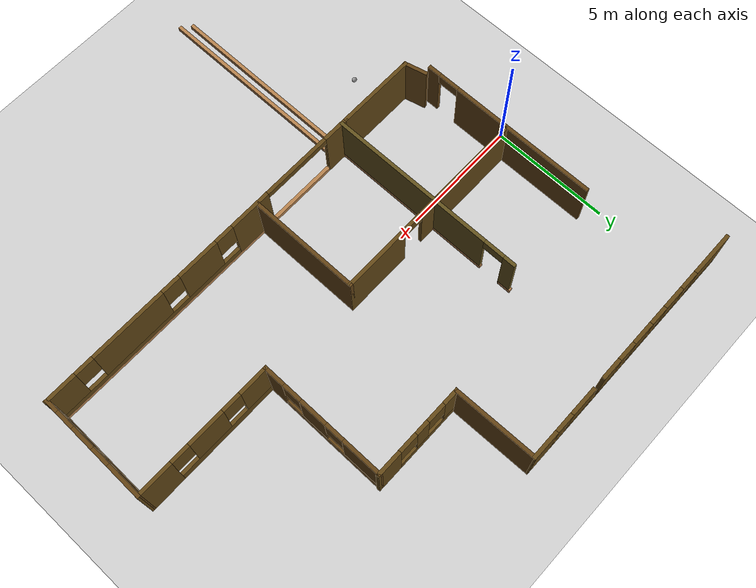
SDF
<sdf version="1.6">
 <world name="default">
  <model name="ground_plane">
   <static>1</static>
   <link name="link">
    <collision name="collision">
     <geometry><plane><normal>0 0 1</normal><size>100 100</size></plane></geometry>
     <surface>
      <contact><collide_bitmask>65535</collide_bitmask></contact>
      <friction><ode><mu>100</mu><mu2>50</mu2></ode></friction>
     </surface>
    </collision>
    <visual name="visual">
     <cast_shadows>0</cast_shadows>
     <geometry><plane><normal>0 0 1</normal><size>100 100</size></plane></geometry>
     <material>
      <script><uri>file://media/materials/scripts/gazebo.material</uri><name>Gazebo/Grey</name></script>
     </material>
    </visual>
   </link>
  </model>
  <model name="BuildMyWorld">
   <pose>-3.99019 0.7838 0 0 -0 0</pose>
   <link name="Wall_101">
    <collision name="Wall_101_Collision">
     <geometry><box><size>8.965 0.15 0.2</size></box></geometry>
     <pose>0 0 0.1 0 -0 0</pose>
    </collision>
    <visual name="Wall_101_Visual">
     <pose>0 0 0.1 0 -0 0</pose>
     <geometry><box><size>8.965 0.15 0.2</size></box></geometry>
     <material>
      <script><uri>file://media/materials/scripts/gazebo.material</uri><name>Gazebo/Wood</name></script>
      <ambient>1 1 1 1</ambient>
     </material>
     <meta><layer>0</layer></meta>
    </visual>
    <pose>9.13619 -9.29728 0 0 -0 1.5708</pose>
   </link>
   <link name="Wall_52">
    <pose>8.73919 -4.86228 0 0 -0 1.5708</pose>
    <visual name="Wall_52_Visual_0">
     <pose>-0.730883 0 0.1 0 -0 0</pose>
     <geometry><box><size>15.7353 0.15 0.2</size></box></geometry>
     <material>
      <script><uri>file://media/materials/scripts/gazebo.material</uri><name>Gazebo/Wood</name></script>
      <ambient>1 1 1 1</ambient>
     </material>
     <meta><layer>0</layer></meta>
    </visual>
    <collision name="Wall_52_Collision_0">
     <geometry><box><size>15.7353 0.15 0.2</size></box></geometry>
     <pose>-0.730883 0 0.1 0 -0 0</pose>
    </collision>
    <visual name="Wall_52_Visual_1">
     <pose>8.31765 0 0.1 0 -0 0</pose>
     <geometry><box><size>0.561765 0.15 0.2</size></box></geometry>
     <material>
      <script><uri>file://media/materials/scripts/gazebo.material</uri><name>Gazebo/Wood</name></script>
      <ambient>1 1 1 1</ambient>
     </material>
     <meta><layer>0</layer></meta>
    </visual>
    <collision name="Wall_52_Collision_1">
     <geometry><box><size>0.561765 0.15 0.2</size></box></geometry>
     <pose>8.31765 0 0.1 0 -0 0</pose>
    </collision>
   </link>
   <link name="Wall_55">
    <collision name="Wall_55_Collision">
     <geometry><box><size>1.02553 0.15 2.5</size></box></geometry>
     <pose>0 0 1.25 0 -0 0</pose>
    </collision>
    <visual name="Wall_55_Visual">
     <pose>0 0 1.25 0 -0 0</pose>
     <geometry><box><size>1.02553 0.15 2.5</size></box></geometry>
     <material>
      <script><uri>file://media/materials/scripts/gazebo.material</uri><name>Gazebo/Grey</name></script>
      <ambient>0.384314 0.258824 0.0823529 1</ambient>
     </material>
     <meta><layer>0</layer></meta>
    </visual>
    <pose>5.11981 -4.37063 0 0 0 -1.32872</pose>
   </link>
   <link name="Wall_56">
    <collision name="Wall_56_Collision">
     <geometry><box><size>3.43004 0.15 2.5</size></box></geometry>
     <pose>0 0 1.25 0 -0 0</pose>
    </collision>
    <visual name="Wall_56_Visual">
     <pose>0 0 1.25 0 -0 0</pose>
     <geometry><box><size>3.43004 0.15 2.5</size></box></geometry>
     <material>
      <script><uri>file://media/materials/scripts/gazebo.material</uri><name>Gazebo/Grey</name></script>
      <ambient>0.384314 0.27451 0.0862745 1</ambient>
     </material>
     <meta><layer>0</layer></meta>
    </visual>
    <pose>6.86477 -4.79563 0 0 -0 0</pose>
   </link>
   <link name="Wall_58">
    <pose>15.8398 -4.79563 0 0 -0 0</pose>
    <visual name="Wall_58_Visual_0">
     <pose>-6.78269 0 1.25 0 -0 0</pose>
     <geometry><box><size>1.18462 0.15 2.5</size></box></geometry>
     <material>
      <script><uri>file://media/materials/scripts/gazebo.material</uri><name>Gazebo/Grey</name></script>
      <ambient>0.384314 0.27451 0.0862745 1</ambient>
     </material>
     <meta><layer>0</layer></meta>
    </visual>
    <collision name="Wall_58_Collision_0">
     <geometry><box><size>1.18462 0.15 2.5</size></box></geometry>
     <pose>-6.78269 0 1.25 0 -0 0</pose>
    </collision>
    <visual name="Wall_58_Visual_1">
     <pose>0.592308 0 0.1 0 -0 0</pose>
     <geometry><box><size>13.5654 0.15 0.2</size></box></geometry>
     <material>
      <script><uri>file://media/materials/scripts/gazebo.material</uri><name>Gazebo/Wood</name></script>
      <ambient>0.384314 0.27451 0.0862745 1</ambient>
     </material>
     <meta><layer>0</layer></meta>
    </visual>
    <collision name="Wall_58_Collision_1">
     <geometry><box><size>13.5654 0.15 0.2</size></box></geometry>
     <pose>0.592308 0 0.1 0 -0 0</pose>
    </collision>
    <visual name="Wall_58_Visual_2">
     <pose>-2.29175 0 1.35 0 -0 0</pose>
     <geometry><box><size>1.79726 0.15 2.3</size></box></geometry>
     <material>
      <script><uri>file://media/materials/scripts/gazebo.material</uri><name>Gazebo/Grey</name></script>
      <ambient>0.384314 0.27451 0.0862745 1</ambient>
     </material>
     <meta><layer>0</layer></meta>
    </visual>
    <collision name="Wall_58_Collision_2">
     <geometry><box><size>1.79726 0.15 2.3</size></box></geometry>
     <pose>-2.29175 0 1.35 0 -0 0</pose>
    </collision>
    <visual name="Wall_58_Visual_3">
     <pose>2.99094 0 0.35 0 -0 0</pose>
     <geometry><box><size>8.76812 0.15 0.3</size></box></geometry>
     <material>
      <script><uri>file://media/materials/scripts/gazebo.material</uri><name>Gazebo/Grey</name></script>
      <ambient>0.384314 0.27451 0.0862745 1</ambient>
     </material>
     <meta><layer>0</layer></meta>
    </visual>
    <collision name="Wall_58_Collision_3">
     <geometry><box><size>8.76812 0.15 0.3</size></box></geometry>
     <pose>2.99094 0 0.35 0 -0 0</pose>
    </collision>
    <visual name="Wall_58_Visual_4">
     <pose>0.302195 0 1.5 0 -0 0</pose>
     <geometry><box><size>1.79063 0.15 2</size></box></geometry>
     <material>
      <script><uri>file://media/materials/scripts/gazebo.material</uri><name>Gazebo/Grey</name></script>
      <ambient>0.384314 0.27451 0.0862745 1</ambient>
     </material>
     <meta><layer>0</layer></meta>
    </visual>
    <collision name="Wall_58_Collision_4">
     <geometry><box><size>1.79063 0.15 2</size></box></geometry>
     <pose>0.302195 0 1.5 0 -0 0</pose>
    </collision>
    <visual name="Wall_58_Visual_5">
     <pose>3.60987 0 1.5 0 -0 0</pose>
     <geometry><box><size>3.22473 0.15 2</size></box></geometry>
     <material>
      <script><uri>file://media/materials/scripts/gazebo.material</uri><name>Gazebo/Grey</name></script>
      <ambient>0.384314 0.27451 0.0862745 1</ambient>
     </material>
     <meta><layer>0</layer></meta>
    </visual>
    <collision name="Wall_58_Collision_5">
     <geometry><box><size>3.22473 0.15 2</size></box></geometry>
     <pose>3.60987 0 1.5 0 -0 0</pose>
    </collision>
    <visual name="Wall_58_Visual_6">
     <pose>6.69862 0 1.5 0 -0 0</pose>
     <geometry><box><size>1.35277 0.15 2</size></box></geometry>
     <material>
      <script><uri>file://media/materials/scripts/gazebo.material</uri><name>Gazebo/Grey</name></script>
      <ambient>0.384314 0.27451 0.0862745 1</ambient>
     </material>
     <meta><layer>0</layer></meta>
    </visual>
    <collision name="Wall_58_Collision_6">
     <geometry><box><size>1.35277 0.15 2</size></box></geometry>
     <pose>6.69862 0 1.5 0 -0 0</pose>
    </collision>
    <visual name="Wall_58_Visual_7">
     <pose>-0.993119 0 1.9 0 -0 0</pose>
     <geometry><box><size>0.8 0.15 1.2</size></box></geometry>
     <material>
      <script><uri>file://media/materials/scripts/gazebo.material</uri><name>Gazebo/Grey</name></script>
      <ambient>0.384314 0.27451 0.0862745 1</ambient>
     </material>
     <meta><layer>0</layer></meta>
    </visual>
    <collision name="Wall_58_Collision_7">
     <geometry><box><size>0.8 0.15 1.2</size></box></geometry>
     <pose>-0.993119 0 1.9 0 -0 0</pose>
    </collision>
    <visual name="Wall_58_Visual_8">
     <pose>1.59751 0 1.9 0 -0 0</pose>
     <geometry><box><size>0.8 0.15 1.2</size></box></geometry>
     <material>
      <script><uri>file://media/materials/scripts/gazebo.material</uri><name>Gazebo/Grey</name></script>
      <ambient>0.384314 0.27451 0.0862745 1</ambient>
     </material>
     <meta><layer>0</layer></meta>
    </visual>
    <collision name="Wall_58_Collision_8">
     <geometry><box><size>0.8 0.15 1.2</size></box></geometry>
     <pose>1.59751 0 1.9 0 -0 0</pose>
    </collision>
    <visual name="Wall_58_Visual_9">
     <pose>5.62223 0 1.9 0 -0 0</pose>
     <geometry><box><size>0.8 0.15 1.2</size></box></geometry>
     <material>
      <script><uri>file://media/materials/scripts/gazebo.material</uri><name>Gazebo/Grey</name></script>
      <ambient>0.384314 0.27451 0.0862745 1</ambient>
     </material>
     <meta><layer>0</layer></meta>
    </visual>
    <collision name="Wall_58_Collision_9">
     <geometry><box><size>0.8 0.15 1.2</size></box></geometry>
     <pose>5.62223 0 1.9 0 -0 0</pose>
    </collision>
    <visual name="Wall_58_Visual_10">
     <pose>-4.69038 0 2.35 0 -0 0</pose>
     <geometry><box><size>3 0.15 0.3</size></box></geometry>
     <material>
      <script><uri>file://media/materials/scripts/gazebo.material</uri><name>Gazebo/Grey</name></script>
      <ambient>0.384314 0.27451 0.0862745 1</ambient>
     </material>
     <meta><layer>0</layer></meta>
    </visual>
    <collision name="Wall_58_Collision_10">
     <geometry><box><size>3 0.15 0.3</size></box></geometry>
     <pose>-4.69038 0 2.35 0 -0 0</pose>
    </collision>
   </link>
   <link name="Wall_59">
    <pose>23.1398 -2.49563 0 0 -0 1.55559</pose>
    <visual name="Wall_59_Visual_0">
     <pose>-2.07621 0 1.25 0 -0 0</pose>
     <geometry><box><size>0.597589 0.15 2.5</size></box></geometry>
     <material>
      <script><uri>file://media/materials/scripts/gazebo.material</uri><name>Gazebo/Grey</name></script>
      <ambient>0.384314 0.258824 0.0823529 1</ambient>
     </material>
     <meta><layer>0</layer></meta>
    </visual>
    <collision name="Wall_59_Collision_0">
     <geometry><box><size>0.597589 0.15 2.5</size></box></geometry>
     <pose>-2.07621 0 1.25 0 -0 0</pose>
    </collision>
    <visual name="Wall_59_Visual_1">
     <pose>0.298794 0 0.25 0 -0 0</pose>
     <geometry><box><size>4.15241 0.15 0.5</size></box></geometry>
     <material>
      <script><uri>file://media/materials/scripts/gazebo.material</uri><name>Gazebo/Grey</name></script>
      <ambient>0.384314 0.258824 0.0823529 1</ambient>
     </material>
     <meta><layer>0</layer></meta>
    </visual>
    <collision name="Wall_59_Collision_1">
     <geometry><box><size>4.15241 0.15 0.5</size></box></geometry>
     <pose>0.298794 0 0.25 0 -0 0</pose>
    </collision>
    <visual name="Wall_59_Visual_2">
     <pose>-0.474898 0 1.5 0 -0 0</pose>
     <geometry><box><size>1.00503 0.15 2</size></box></geometry>
     <material>
      <script><uri>file://media/materials/scripts/gazebo.material</uri><name>Gazebo/Grey</name></script>
      <ambient>0.384314 0.258824 0.0823529 1</ambient>
     </material>
     <meta><layer>0</layer></meta>
    </visual>
    <collision name="Wall_59_Collision_2">
     <geometry><box><size>1.00503 0.15 2</size></box></geometry>
     <pose>-0.474898 0 1.5 0 -0 0</pose>
    </collision>
    <visual name="Wall_59_Visual_3">
     <pose>1.60131 0 1.5 0 -0 0</pose>
     <geometry><box><size>1.54739 0.15 2</size></box></geometry>
     <material>
      <script><uri>file://media/materials/scripts/gazebo.material</uri><name>Gazebo/Grey</name></script>
      <ambient>0.384314 0.258824 0.0823529 1</ambient>
     </material>
     <meta><layer>0</layer></meta>
    </visual>
    <collision name="Wall_59_Collision_3">
     <geometry><box><size>1.54739 0.15 2</size></box></geometry>
     <pose>1.60131 0 1.5 0 -0 0</pose>
    </collision>
    <visual name="Wall_59_Visual_4">
     <pose>-1.37741 0 1.9 0 -0 0</pose>
     <geometry><box><size>0.8 0.15 1.2</size></box></geometry>
     <material>
      <script><uri>file://media/materials/scripts/gazebo.material</uri><name>Gazebo/Grey</name></script>
      <ambient>0.384314 0.258824 0.0823529 1</ambient>
     </material>
     <meta><layer>0</layer></meta>
    </visual>
    <collision name="Wall_59_Collision_4">
     <geometry><box><size>0.8 0.15 1.2</size></box></geometry>
     <pose>-1.37741 0 1.9 0 -0 0</pose>
    </collision>
    <visual name="Wall_59_Visual_5">
     <pose>0.427615 0 1.9 0 -0 0</pose>
     <geometry><box><size>0.8 0.15 1.2</size></box></geometry>
     <material>
      <script><uri>file://media/materials/scripts/gazebo.material</uri><name>Gazebo/Grey</name></script>
      <ambient>0.384314 0.258824 0.0823529 1</ambient>
     </material>
     <meta><layer>0</layer></meta>
    </visual>
    <collision name="Wall_59_Collision_5">
     <geometry><box><size>0.8 0.15 1.2</size></box></geometry>
     <pose>0.427615 0 1.9 0 -0 0</pose>
    </collision>
   </link>
   <link name="Wall_60">
    <pose>20.2498 -0.195633 0 0 -0 3.14159</pose>
    <visual name="Wall_60_Visual_0">
     <pose>-2.23109 0 1.25 0 -0 0</pose>
     <geometry><box><size>1.53781 0.15 2.5</size></box></geometry>
     <material>
      <script><uri>file://media/materials/scripts/gazebo.material</uri><name>Gazebo/Grey</name></script>
      <ambient>0.384314 0.27451 0.0862745 1</ambient>
     </material>
     <meta><layer>0</layer></meta>
    </visual>
    <collision name="Wall_60_Collision_0">
     <geometry><box><size>1.53781 0.15 2.5</size></box></geometry>
     <pose>-2.23109 0 1.25 0 -0 0</pose>
    </collision>
    <visual name="Wall_60_Visual_1">
     <pose>0.768905 0 0.25 0 -0 0</pose>
     <geometry><box><size>4.46219 0.15 0.5</size></box></geometry>
     <material>
      <script><uri>file://media/materials/scripts/gazebo.material</uri><name>Gazebo/Grey</name></script>
      <ambient>0.384314 0.27451 0.0862745 1</ambient>
     </material>
     <meta><layer>0</layer></meta>
    </visual>
    <collision name="Wall_60_Collision_1">
     <geometry><box><size>4.46219 0.15 0.5</size></box></geometry>
     <pose>0.768905 0 0.25 0 -0 0</pose>
    </collision>
    <visual name="Wall_60_Visual_2">
     <pose>0.117472 0 1.5 0 -0 0</pose>
     <geometry><box><size>1.55932 0.15 2</size></box></geometry>
     <material>
      <script><uri>file://media/materials/scripts/gazebo.material</uri><name>Gazebo/Grey</name></script>
      <ambient>0.384314 0.27451 0.0862745 1</ambient>
     </material>
     <meta><layer>0</layer></meta>
    </visual>
    <collision name="Wall_60_Collision_2">
     <geometry><box><size>1.55932 0.15 2</size></box></geometry>
     <pose>0.117472 0 1.5 0 -0 0</pose>
    </collision>
    <visual name="Wall_60_Visual_3">
     <pose>2.34857 0 1.5 0 -0 0</pose>
     <geometry><box><size>1.30287 0.15 2</size></box></geometry>
     <material>
      <script><uri>file://media/materials/scripts/gazebo.material</uri><name>Gazebo/Grey</name></script>
      <ambient>0.384314 0.27451 0.0862745 1</ambient>
     </material>
     <meta><layer>0</layer></meta>
    </visual>
    <collision name="Wall_60_Collision_3">
     <geometry><box><size>1.30287 0.15 2</size></box></geometry>
     <pose>2.34857 0 1.5 0 -0 0</pose>
    </collision>
    <visual name="Wall_60_Visual_4">
     <pose>-1.06219 0 1.9 0 -0 0</pose>
     <geometry><box><size>0.8 0.15 1.2</size></box></geometry>
     <material>
      <script><uri>file://media/materials/scripts/gazebo.material</uri><name>Gazebo/Grey</name></script>
      <ambient>0.384314 0.27451 0.0862745 1</ambient>
     </material>
     <meta><layer>0</layer></meta>
    </visual>
    <collision name="Wall_60_Collision_4">
     <geometry><box><size>0.8 0.15 1.2</size></box></geometry>
     <pose>-1.06219 0 1.9 0 -0 0</pose>
    </collision>
    <visual name="Wall_60_Visual_5">
     <pose>1.29713 0 1.9 0 -0 0</pose>
     <geometry><box><size>0.8 0.15 1.2</size></box></geometry>
     <material>
      <script><uri>file://media/materials/scripts/gazebo.material</uri><name>Gazebo/Grey</name></script>
      <ambient>0.384314 0.27451 0.0862745 1</ambient>
     </material>
     <meta><layer>0</layer></meta>
    </visual>
    <collision name="Wall_60_Collision_5">
     <geometry><box><size>0.8 0.15 1.2</size></box></geometry>
     <pose>1.29713 0 1.9 0 -0 0</pose>
    </collision>
   </link>
   <link name="Wall_61">
    <pose>17.334 2.45647 0 0 -0 1.56732</pose>
    <visual name="Wall_61_Visual_0">
     <pose>-2.25334 0 1.25 0 -0 0</pose>
     <geometry><box><size>0.94756 0.15 2.5</size></box></geometry>
     <material>
      <script><uri>file://media/materials/scripts/gazebo.material</uri><name>Gazebo/Grey</name></script>
      <ambient>0.384314 0.258824 0.0823529 1</ambient>
     </material>
     <meta><layer>0</layer></meta>
    </visual>
    <collision name="Wall_61_Collision_0">
     <geometry><box><size>0.94756 0.15 2.5</size></box></geometry>
     <pose>-2.25334 0 1.25 0 -0 0</pose>
    </collision>
    <visual name="Wall_61_Visual_1">
     <pose>0.47378 0 0.25 0 -0 0</pose>
     <geometry><box><size>4.50669 0.15 0.5</size></box></geometry>
     <material>
      <script><uri>file://media/materials/scripts/gazebo.material</uri><name>Gazebo/Grey</name></script>
      <ambient>0.384314 0.258824 0.0823529 1</ambient>
     </material>
     <meta><layer>0</layer></meta>
    </visual>
    <collision name="Wall_61_Collision_1">
     <geometry><box><size>4.50669 0.15 0.5</size></box></geometry>
     <pose>0.47378 0 0.25 0 -0 0</pose>
    </collision>
    <visual name="Wall_61_Visual_2">
     <pose>-0.385033 0 1.5 0 -0 0</pose>
     <geometry><box><size>1.18906 0.15 2</size></box></geometry>
     <material>
      <script><uri>file://media/materials/scripts/gazebo.material</uri><name>Gazebo/Grey</name></script>
      <ambient>0.384314 0.258824 0.0823529 1</ambient>
     </material>
     <meta><layer>0</layer></meta>
    </visual>
    <collision name="Wall_61_Collision_2">
     <geometry><box><size>1.18906 0.15 2</size></box></geometry>
     <pose>-0.385033 0 1.5 0 -0 0</pose>
    </collision>
    <visual name="Wall_61_Visual_3">
     <pose>1.86831 0 1.5 0 -0 0</pose>
     <geometry><box><size>1.71763 0.15 2</size></box></geometry>
     <material>
      <script><uri>file://media/materials/scripts/gazebo.material</uri><name>Gazebo/Grey</name></script>
      <ambient>0.384314 0.258824 0.0823529 1</ambient>
     </material>
     <meta><layer>0</layer></meta>
    </visual>
    <collision name="Wall_61_Collision_3">
     <geometry><box><size>1.71763 0.15 2</size></box></geometry>
     <pose>1.86831 0 1.5 0 -0 0</pose>
    </collision>
    <visual name="Wall_61_Visual_4">
     <pose>-1.37956 0 1.9 0 -0 0</pose>
     <geometry><box><size>0.8 0.15 1.2</size></box></geometry>
     <material>
      <script><uri>file://media/materials/scripts/gazebo.material</uri><name>Gazebo/Grey</name></script>
      <ambient>0.384314 0.258824 0.0823529 1</ambient>
     </material>
     <meta><layer>0</layer></meta>
    </visual>
    <collision name="Wall_61_Collision_4">
     <geometry><box><size>0.8 0.15 1.2</size></box></geometry>
     <pose>-1.37956 0 1.9 0 -0 0</pose>
    </collision>
    <visual name="Wall_61_Visual_5">
     <pose>0.609496 0 1.9 0 -0 0</pose>
     <geometry><box><size>0.8 0.15 1.2</size></box></geometry>
     <material>
      <script><uri>file://media/materials/scripts/gazebo.material</uri><name>Gazebo/Grey</name></script>
      <ambient>0.384314 0.258824 0.0823529 1</ambient>
     </material>
     <meta><layer>0</layer></meta>
    </visual>
    <collision name="Wall_61_Collision_5">
     <geometry><box><size>0.8 0.15 1.2</size></box></geometry>
     <pose>0.609496 0 1.9 0 -0 0</pose>
    </collision>
   </link>
   <link name="Wall_62">
    <pose>15.4532 5.10858 0 0 -0 3.14159</pose>
    <visual name="Wall_62_Visual_0">
     <pose>-1.44622 0 1.25 0 -0 0</pose>
     <geometry><box><size>1.10755 0.15 2.5</size></box></geometry>
     <material>
      <script><uri>file://media/materials/scripts/gazebo.material</uri><name>Gazebo/Grey</name></script>
      <ambient>0.384314 0.27451 0.0862745 1</ambient>
     </material>
     <meta><layer>0</layer></meta>
    </visual>
    <collision name="Wall_62_Collision_0">
     <geometry><box><size>1.10755 0.15 2.5</size></box></geometry>
     <pose>-1.44622 0 1.25 0 -0 0</pose>
    </collision>
    <visual name="Wall_62_Visual_1">
     <pose>0.553776 0 0.25 0 -0 0</pose>
     <geometry><box><size>2.89245 0.15 0.5</size></box></geometry>
     <material>
      <script><uri>file://media/materials/scripts/gazebo.material</uri><name>Gazebo/Grey</name></script>
      <ambient>0.384314 0.27451 0.0862745 1</ambient>
     </material>
     <meta><layer>0</layer></meta>
    </visual>
    <collision name="Wall_62_Collision_1">
     <geometry><box><size>2.89245 0.15 0.5</size></box></geometry>
     <pose>0.553776 0 0.25 0 -0 0</pose>
    </collision>
    <visual name="Wall_62_Visual_2">
     <pose>0.201469 0 1.5 0 -0 0</pose>
     <geometry><box><size>0.587836 0.15 2</size></box></geometry>
     <material>
      <script><uri>file://media/materials/scripts/gazebo.material</uri><name>Gazebo/Grey</name></script>
      <ambient>0.384314 0.27451 0.0862745 1</ambient>
     </material>
     <meta><layer>0</layer></meta>
    </visual>
    <collision name="Wall_62_Collision_2">
     <geometry><box><size>0.587836 0.15 2</size></box></geometry>
     <pose>0.201469 0 1.5 0 -0 0</pose>
    </collision>
    <visual name="Wall_62_Visual_3">
     <pose>1.64769 0 1.5 0 -0 0</pose>
     <geometry><box><size>0.704612 0.15 2</size></box></geometry>
     <material>
      <script><uri>file://media/materials/scripts/gazebo.material</uri><name>Gazebo/Grey</name></script>
      <ambient>0.384314 0.27451 0.0862745 1</ambient>
     </material>
     <meta><layer>0</layer></meta>
    </visual>
    <collision name="Wall_62_Collision_3">
     <geometry><box><size>0.704612 0.15 2</size></box></geometry>
     <pose>1.64769 0 1.5 0 -0 0</pose>
    </collision>
    <visual name="Wall_62_Visual_4">
     <pose>-0.492449 0 1.9 0 -0 0</pose>
     <geometry><box><size>0.8 0.15 1.2</size></box></geometry>
     <material>
      <script><uri>file://media/materials/scripts/gazebo.material</uri><name>Gazebo/Grey</name></script>
      <ambient>0.384314 0.27451 0.0862745 1</ambient>
     </material>
     <meta><layer>0</layer></meta>
    </visual>
    <collision name="Wall_62_Collision_4">
     <geometry><box><size>0.8 0.15 1.2</size></box></geometry>
     <pose>-0.492449 0 1.9 0 -0 0</pose>
    </collision>
    <visual name="Wall_62_Visual_5">
     <pose>0.895388 0 1.9 0 -0 0</pose>
     <geometry><box><size>0.8 0.15 1.2</size></box></geometry>
     <material>
      <script><uri>file://media/materials/scripts/gazebo.material</uri><name>Gazebo/Grey</name></script>
      <ambient>0.384314 0.27451 0.0862745 1</ambient>
     </material>
     <meta><layer>0</layer></meta>
    </visual>
    <collision name="Wall_62_Collision_5">
     <geometry><box><size>0.8 0.15 1.2</size></box></geometry>
     <pose>0.895388 0 1.9 0 -0 0</pose>
    </collision>
   </link>
   <link name="Wall_63">
    <collision name="Wall_63_Collision">
     <geometry><box><size>3.54621 0.15 2.5</size></box></geometry>
     <pose>0 0 1.25 0 -0 0</pose>
    </collision>
    <visual name="Wall_63_Visual">
     <pose>0 0 1.25 0 -0 0</pose>
     <geometry><box><size>3.54621 0.15 2.5</size></box></geometry>
     <material>
      <script><uri>file://media/materials/scripts/gazebo.material</uri><name>Gazebo/Grey</name></script>
      <ambient>0.384314 0.258824 0.0823529 1</ambient>
     </material>
     <meta><layer>0</layer></meta>
    </visual>
    <pose>13.5015 6.80647 0 0 -0 1.58653</pose>
   </link>
   <link name="Wall_64">
    <pose>11.9247 8.50437 0 0 -0 3.14159</pose>
    <visual name="Wall_64_Visual_0">
     <pose>-1.01058 0 1.25 0 -0 0</pose>
     <geometry><box><size>1.22884 0.15 2.5</size></box></geometry>
     <material>
      <script><uri>file://media/materials/scripts/gazebo.material</uri><name>Gazebo/Grey</name></script>
      <ambient>0.384314 0.27451 0.0862745 1</ambient>
     </material>
     <meta><layer>0</layer></meta>
    </visual>
    <collision name="Wall_64_Collision_0">
     <geometry><box><size>1.22884 0.15 2.5</size></box></geometry>
     <pose>-1.01058 0 1.25 0 -0 0</pose>
    </collision>
    <visual name="Wall_64_Visual_1">
     <pose>0.614419 0 0.25 0 -0 0</pose>
     <geometry><box><size>2.02116 0.15 0.5</size></box></geometry>
     <material>
      <script><uri>file://media/materials/scripts/gazebo.material</uri><name>Gazebo/Grey</name></script>
      <ambient>0.384314 0.27451 0.0862745 1</ambient>
     </material>
     <meta><layer>0</layer></meta>
    </visual>
    <collision name="Wall_64_Collision_1">
     <geometry><box><size>2.02116 0.15 0.5</size></box></geometry>
     <pose>0.614419 0 0.25 0 -0 0</pose>
    </collision>
    <visual name="Wall_64_Visual_2">
     <pose>1.01442 0 1.5 0 -0 0</pose>
     <geometry><box><size>1.22116 0.15 2</size></box></geometry>
     <material>
      <script><uri>file://media/materials/scripts/gazebo.material</uri><name>Gazebo/Grey</name></script>
      <ambient>0.384314 0.27451 0.0862745 1</ambient>
     </material>
     <meta><layer>0</layer></meta>
    </visual>
    <collision name="Wall_64_Collision_2">
     <geometry><box><size>1.22116 0.15 2</size></box></geometry>
     <pose>1.01442 0 1.5 0 -0 0</pose>
    </collision>
    <visual name="Wall_64_Visual_3">
     <pose>0.003837 0 1.9 0 -0 0</pose>
     <geometry><box><size>0.8 0.15 1.2</size></box></geometry>
     <material>
      <script><uri>file://media/materials/scripts/gazebo.material</uri><name>Gazebo/Grey</name></script>
      <ambient>0.384314 0.27451 0.0862745 1</ambient>
     </material>
     <meta><layer>0</layer></meta>
    </visual>
    <collision name="Wall_64_Collision_3">
     <geometry><box><size>0.8 0.15 1.2</size></box></geometry>
     <pose>0.003837 0 1.9 0 -0 0</pose>
    </collision>
   </link>
   <link name="Wall_65">
    <pose>6.57475 8.50437 0 0 -0 3.14159</pose>
    <visual name="Wall_65_Visual_0">
     <pose>0 0 0.25 0 -0 0</pose>
     <geometry><box><size>7.75 0.15 0.5</size></box></geometry>
     <material>
      <script><uri>file://media/materials/scripts/gazebo.material</uri><name>Gazebo/Grey</name></script>
      <ambient>0.384314 0.27451 0.0862745 1</ambient>
     </material>
     <meta><layer>0</layer></meta>
    </visual>
    <collision name="Wall_65_Collision_0">
     <geometry><box><size>7.75 0.15 0.5</size></box></geometry>
     <pose>0 0 0.25 0 -0 0</pose>
    </collision>
    <visual name="Wall_65_Visual_1">
     <pose>-2.82493 0 1.5 0 -0 0</pose>
     <geometry><box><size>0.911665 0.15 2</size></box></geometry>
     <material>
      <script><uri>file://media/materials/scripts/gazebo.material</uri><name>Gazebo/Grey</name></script>
      <ambient>0.384314 0.27451 0.0862745 1</ambient>
     </material>
     <meta><layer>0</layer></meta>
    </visual>
    <collision name="Wall_65_Collision_1">
     <geometry><box><size>0.911665 0.15 2</size></box></geometry>
     <pose>-2.82493 0 1.5 0 -0 0</pose>
    </collision>
    <visual name="Wall_65_Visual_2">
     <pose>-1.09013 0 1.5 0 -0 0</pose>
     <geometry><box><size>0.957926 0.15 2</size></box></geometry>
     <material>
      <script><uri>file://media/materials/scripts/gazebo.material</uri><name>Gazebo/Grey</name></script>
      <ambient>0.384314 0.27451 0.0862745 1</ambient>
     </material>
     <meta><layer>0</layer></meta>
    </visual>
    <collision name="Wall_65_Collision_2">
     <geometry><box><size>0.957926 0.15 2</size></box></geometry>
     <pose>-1.09013 0 1.5 0 -0 0</pose>
    </collision>
    <visual name="Wall_65_Visual_3">
     <pose>0.667795 0 1.5 0 -0 0</pose>
     <geometry><box><size>0.957926 0.15 2</size></box></geometry>
     <material>
      <script><uri>file://media/materials/scripts/gazebo.material</uri><name>Gazebo/Grey</name></script>
      <ambient>0.384314 0.27451 0.0862745 1</ambient>
     </material>
     <meta><layer>0</layer></meta>
    </visual>
    <collision name="Wall_65_Collision_3">
     <geometry><box><size>0.957926 0.15 2</size></box></geometry>
     <pose>0.667795 0 1.5 0 -0 0</pose>
    </collision>
    <visual name="Wall_65_Visual_4">
     <pose>2.91088 0 1.5 0 -0 0</pose>
     <geometry><box><size>1.92824 0.15 2</size></box></geometry>
     <material>
      <script><uri>file://media/materials/scripts/gazebo.material</uri><name>Gazebo/Grey</name></script>
      <ambient>0.384314 0.27451 0.0862745 1</ambient>
     </material>
     <meta><layer>0</layer></meta>
    </visual>
    <collision name="Wall_65_Collision_4">
     <geometry><box><size>1.92824 0.15 2</size></box></geometry>
     <pose>2.91088 0 1.5 0 -0 0</pose>
    </collision>
    <visual name="Wall_65_Visual_5">
     <pose>-1.96909 0 1.9 0 -0 0</pose>
     <geometry><box><size>0.8 0.15 1.2</size></box></geometry>
     <material>
      <script><uri>file://media/materials/scripts/gazebo.material</uri><name>Gazebo/Grey</name></script>
      <ambient>0.384314 0.27451 0.0862745 1</ambient>
     </material>
     <meta><layer>0</layer></meta>
    </visual>
    <collision name="Wall_65_Collision_5">
     <geometry><box><size>0.8 0.15 1.2</size></box></geometry>
     <pose>-1.96909 0 1.9 0 -0 0</pose>
    </collision>
    <visual name="Wall_65_Visual_6">
     <pose>-0.211168 0 1.9 0 -0 0</pose>
     <geometry><box><size>0.8 0.15 1.2</size></box></geometry>
     <material>
      <script><uri>file://media/materials/scripts/gazebo.material</uri><name>Gazebo/Grey</name></script>
      <ambient>0.384314 0.27451 0.0862745 1</ambient>
     </material>
     <meta><layer>0</layer></meta>
    </visual>
    <collision name="Wall_65_Collision_6">
     <geometry><box><size>0.8 0.15 1.2</size></box></geometry>
     <pose>-0.211168 0 1.9 0 -0 0</pose>
    </collision>
    <visual name="Wall_65_Visual_7">
     <pose>1.54676 0 1.9 0 -0 0</pose>
     <geometry><box><size>0.8 0.15 1.2</size></box></geometry>
     <material>
      <script><uri>file://media/materials/scripts/gazebo.material</uri><name>Gazebo/Grey</name></script>
      <ambient>0.384314 0.27451 0.0862745 1</ambient>
     </material>
     <meta><layer>0</layer></meta>
    </visual>
    <collision name="Wall_65_Collision_7">
     <geometry><box><size>0.8 0.15 1.2</size></box></geometry>
     <pose>1.54676 0 1.9 0 -0 0</pose>
    </collision>
   </link>
   <link name="Wall_85">
    <pose>4.6936 -0.171061 0 0 -0 1.5708</pose>
    <visual name="Wall_85_Visual_0">
     <pose>-3.58897 0 1.25 0 -0 0</pose>
     <geometry><box><size>0.57206 0.15 2.5</size></box></geometry>
     <material>
      <script><uri>file://media/materials/scripts/gazebo.material</uri><name>Gazebo/Grey</name></script>
      <ambient>0.384314 0.258824 0.0823529 1</ambient>
     </material>
     <meta><layer>0</layer></meta>
    </visual>
    <collision name="Wall_85_Collision_0">
     <geometry><box><size>0.57206 0.15 2.5</size></box></geometry>
     <pose>-3.58897 0 1.25 0 -0 0</pose>
    </collision>
    <visual name="Wall_85_Visual_1">
     <pose>0.73603 0 1.25 0 -0 0</pose>
     <geometry><box><size>6.27794 0.15 2.5</size></box></geometry>
     <material>
      <script><uri>file://media/materials/scripts/gazebo.material</uri><name>Gazebo/Grey</name></script>
      <ambient>0.384314 0.258824 0.0823529 1</ambient>
     </material>
     <meta><layer>0</layer></meta>
    </visual>
    <collision name="Wall_85_Collision_1">
     <geometry><box><size>6.27794 0.15 2.5</size></box></geometry>
     <pose>0.73603 0 1.25 0 -0 0</pose>
    </collision>
    <visual name="Wall_85_Visual_2">
     <pose>-2.85294 0 2.25 0 -0 0</pose>
     <geometry><box><size>0.9 0.15 0.5</size></box></geometry>
     <material>
      <script><uri>file://media/materials/scripts/gazebo.material</uri><name>Gazebo/Grey</name></script>
      <ambient>0.384314 0.258824 0.0823529 1</ambient>
     </material>
     <meta><layer>0</layer></meta>
    </visual>
    <collision name="Wall_85_Collision_2">
     <geometry><box><size>0.9 0.15 0.5</size></box></geometry>
     <pose>-2.85294 0 2.25 0 -0 0</pose>
    </collision>
   </link>
   <link name="Wall_90">
    <collision name="Wall_90_Collision">
     <geometry><box><size>4 0.15 2.5</size></box></geometry>
     <pose>0 0 1.25 0 -0 0</pose>
    </collision>
    <visual name="Wall_90_Visual">
     <pose>0 0 1.25 0 -0 0</pose>
     <geometry><box><size>4 0.15 2.5</size></box></geometry>
     <material>
      <script><uri>file://media/materials/scripts/gazebo.material</uri><name>Gazebo/Grey</name></script>
      <ambient>0.384314 0.27451 0.0862745 1</ambient>
     </material>
     <meta><layer>0</layer></meta>
    </visual>
    <pose>6.65746 -0.15118 0 0 -0 0</pose>
   </link>
   <link name="Wall_92">
    <pose>10.8825 -0.15118 0 0 -0 0</pose>
    <visual name="Wall_92_Visual_0">
     <pose>-1.88068 0 1.25 0 -0 0</pose>
     <geometry><box><size>0.988639 0.15 2.5</size></box></geometry>
     <material>
      <script><uri>file://media/materials/scripts/gazebo.material</uri><name>Gazebo/Grey</name></script>
      <ambient>0.384314 0.27451 0.0862745 1</ambient>
     </material>
     <meta><layer>0</layer></meta>
    </visual>
    <collision name="Wall_92_Collision_0">
     <geometry><box><size>0.988639 0.15 2.5</size></box></geometry>
     <pose>-1.88068 0 1.25 0 -0 0</pose>
    </collision>
    <visual name="Wall_92_Visual_1">
     <pose>0.94432 0 1.25 0 -0 0</pose>
     <geometry><box><size>2.86136 0.15 2.5</size></box></geometry>
     <material>
      <script><uri>file://media/materials/scripts/gazebo.material</uri><name>Gazebo/Grey</name></script>
      <ambient>0.384314 0.27451 0.0862745 1</ambient>
     </material>
     <meta><layer>0</layer></meta>
    </visual>
    <collision name="Wall_92_Collision_1">
     <geometry><box><size>2.86136 0.15 2.5</size></box></geometry>
     <pose>0.94432 0 1.25 0 -0 0</pose>
    </collision>
    <visual name="Wall_92_Visual_2">
     <pose>-0.936361 0 2.25 0 -0 0</pose>
     <geometry><box><size>0.9 0.15 0.5</size></box></geometry>
     <material>
      <script><uri>file://media/materials/scripts/gazebo.material</uri><name>Gazebo/Grey</name></script>
      <ambient>0.384314 0.27451 0.0862745 1</ambient>
     </material>
     <meta><layer>0</layer></meta>
    </visual>
    <collision name="Wall_92_Collision_2">
     <geometry><box><size>0.9 0.15 0.5</size></box></geometry>
     <pose>-0.936361 0 2.25 0 -0 0</pose>
    </collision>
   </link>
   <link name="Wall_93">
    <collision name="Wall_93_Collision">
     <geometry><box><size>4.75 0.15 2.5</size></box></geometry>
     <pose>0 0 1.25 0 -0 0</pose>
    </collision>
    <visual name="Wall_93_Visual">
     <pose>0 0 1.25 0 -0 0</pose>
     <geometry><box><size>4.75 0.15 2.5</size></box></geometry>
     <material>
      <script><uri>file://media/materials/scripts/gazebo.material</uri><name>Gazebo/Grey</name></script>
      <ambient>0.384314 0.258824 0.0823529 1</ambient>
     </material>
     <meta><layer>0</layer></meta>
    </visual>
    <pose>13.1825 -2.45118 0 0 0 -1.5708</pose>
   </link>
   <static>1</static>
  </model>
  <model name="AdditionalWall">
   <pose>4.74847 0.205813 0 0 -0 0</pose>
   <link name="Wall_115">
    <pose>0 0 0 0 0 -1.5708</pose>
    <visual name="Wall_115_Visual_0">
     <pose>-3.98651 0 1.25 0 -0 0</pose>
     <geometry><box><size>0.526987 0.15 2.5</size></box></geometry>
     <material>
      <script><uri>file://media/materials/scripts/gazebo.material</uri><name>Gazebo/Grey</name></script>
      <ambient>0.384314 0.317647 0.113725 1</ambient>
     </material>
     <meta><layer>0</layer></meta>
    </visual>
    <collision name="Wall_115_Collision_0">
     <geometry><box><size>0.526987 0.15 2.5</size></box></geometry>
     <pose>-3.98651 0 1.25 0 -0 0</pose>
    </collision>
    <visual name="Wall_115_Visual_1">
     <pose>0.713493 0 1.25 0 -0 0</pose>
     <geometry><box><size>7.07301 0.15 2.5</size></box></geometry>
     <material>
      <script><uri>file://media/materials/scripts/gazebo.material</uri><name>Gazebo/Grey</name></script>
      <ambient>0.384314 0.317647 0.113725 1</ambient>
     </material>
     <meta><layer>0</layer></meta>
    </visual>
    <collision name="Wall_115_Collision_1">
     <geometry><box><size>7.07301 0.15 2.5</size></box></geometry>
     <pose>0.713493 0 1.25 0 -0 0</pose>
    </collision>
    <visual name="Wall_115_Visual_2">
     <pose>-3.27301 0 2.25 0 -0 0</pose>
     <geometry><box><size>0.9 0.15 0.5</size></box></geometry>
     <material>
      <script><uri>file://media/materials/scripts/gazebo.material</uri><name>Gazebo/Grey</name></script>
      <ambient>0.384314 0.317647 0.113725 1</ambient>
     </material>
     <meta><layer>0</layer></meta>
    </visual>
    <collision name="Wall_115_Collision_2">
     <geometry><box><size>0.9 0.15 0.5</size></box></geometry>
     <pose>-3.27301 0 2.25 0 -0 0</pose>
    </collision>
   </link>
   <static>1</static>
  </model>
  <model name="my_ball">
   <link name="link_0">
    <inertial>
     <mass>1</mass>
     <inertia><ixx>0.1</ixx><ixy>0</ixy><ixz>0</ixz><iyy>0.1</iyy><iyz>0</iyz><izz>0.1</izz></inertia>
    </inertial>
    <visual name="visual">
     <geometry><sphere><radius>0.1</radius></sphere></geometry>
     <material>
      <lighting>1</lighting>
      <script><uri>file://media/materials/scripts/gazebo.material</uri><name>Gazebo/Grey</name></script>
      <shader type="pixel"><normal_map>__default__</normal_map></shader>
      <ambient>0.3 0.3 0.3 1</ambient>
      <diffuse>1 1 1 1</diffuse>
      <specular>1 1 1 1</specular>
      <emissive>1 1 1 1</emissive>
     </material>
    </visual>
    <collision name="collision">
     <geometry><sphere><radius>0.1</radius></sphere></geometry>
     <surface>
      <friction>
       <ode><mu>1</mu><mu2>1</mu2><fdir1>0 0 0</fdir1><slip1>0</slip1><slip2>0</slip2></ode>
       <torsional>
        <coefficient>1</coefficient>
        <patch_radius>0</patch_radius>
        <surface_radius>0</surface_radius>
        <use_patch_radius>1</use_patch_radius>
        <ode><slip>0</slip></ode>
       </torsional>
      </friction>
      <bounce><restitution_coefficient>0</restitution_coefficient><threshold>1e+06</threshold></bounce>
      <contact>
       <collide_without_contact>0</collide_without_contact>
       <collide_without_contact_bitmask>1</collide_without_contact_bitmask>
       <collide_bitmask>1</collide_bitmask>
       <ode>
        <soft_cfm>0</soft_cfm>
        <soft_erp>0.2</soft_erp>
        <kp>1e+13</kp>
        <kd>1</kd>
        <max_vel>0.01</max_vel>
        <min_depth>0</min_depth>
       </ode>
       <bullet>
        <split_impulse>1</split_impulse>
        <split_impulse_penetration_threshold>-0.01</split_impulse_penetration_threshold>
        <soft_cfm>0</soft_cfm>
        <soft_erp>0.2</soft_erp>
        <kp>1e+13</kp>
        <kd>1</kd>
       </bullet>
      </contact>
     </surface>
    </collision>
   </link>
   <static>0</static>
   <pose>2.07605 -6.00629 0.1 0 -0 0</pose>
  </model>
 </world>
</sdf>
